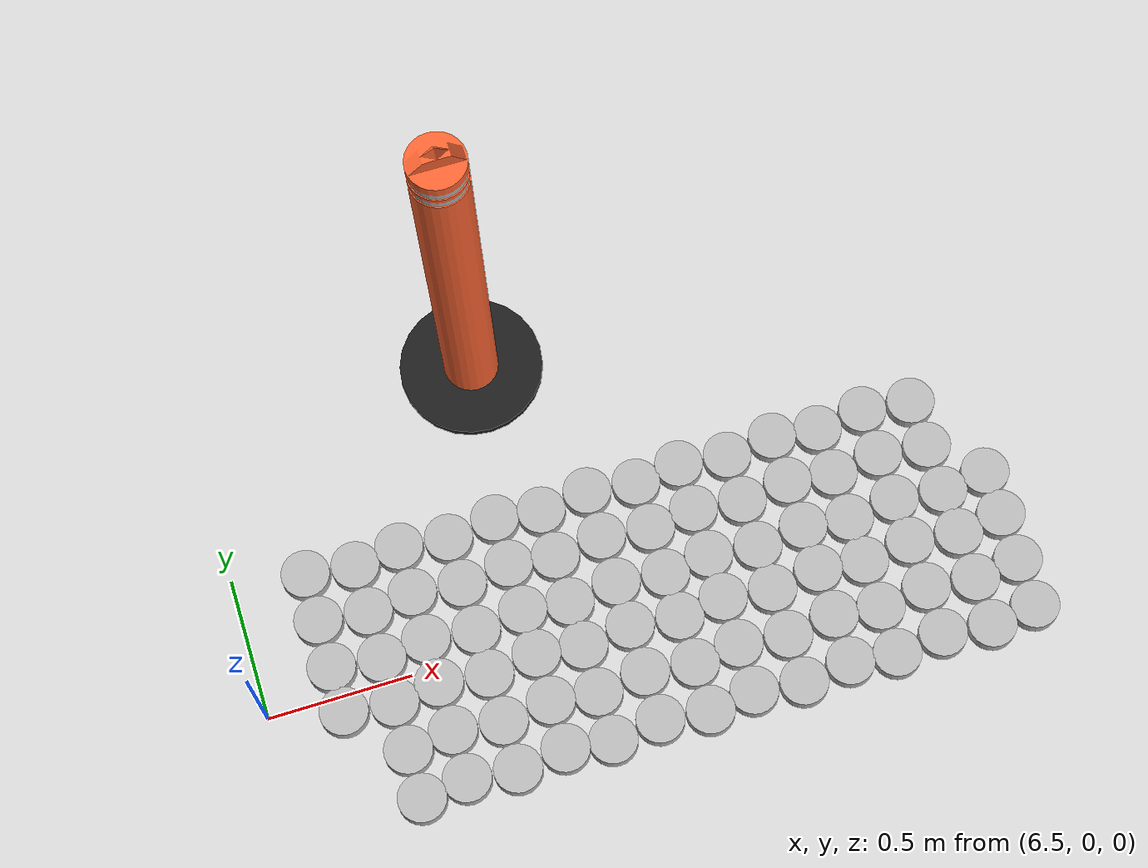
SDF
<sdf version="1.6">
 <world name="default">
  <model name="pylon_orange">
   <include><uri>model://pylon_orange</uri></include>
   <pose>7.5 1 0 0 0 0</pose>
  </model>
  <model name="SnowPuck-31-2-0">
   <pose>6.75 -0.07 0.05  0 0 0</pose>
   <link name="link">
    <inertial>
     <mass>0.01</mass>
     <inertia><ixx>0.145833</ixx><ixy>0</ixy><ixz>0</ixz><iyy>0.145833</iyy><iyz>0</iyz><izz>0.125</izz></inertia>
    </inertial>
    <collision name="collision">
     <geometry><cylinder><radius>.05</radius><length>0.04</length></cylinder></geometry>
    </collision>
    <visual name="visual">
     <geometry><cylinder><radius>.083333</radius><length>0.05</length></cylinder></geometry>
    </visual>
   </link>
  </model>
  <model name="SnowPuck-31-3-0">
   <pose>6.75 0.09 0.05  0 0 0</pose>
   <link name="link">
    <inertial>
     <mass>0.01</mass>
     <inertia><ixx>0.145833</ixx><ixy>0</ixy><ixz>0</ixz><iyy>0.145833</iyy><iyz>0</iyz><izz>0.125</izz></inertia>
    </inertial>
    <collision name="collision">
     <geometry><cylinder><radius>.05</radius><length>0.04</length></cylinder></geometry>
    </collision>
    <visual name="visual">
     <geometry><cylinder><radius>.083333</radius><length>0.05</length></cylinder></geometry>
    </visual>
   </link>
  </model>
  <model name="SnowPuck-31-4-0">
   <pose>6.75 0.26 0.05  0 0 0</pose>
   <link name="link">
    <inertial>
     <mass>0.01</mass>
     <inertia><ixx>0.145833</ixx><ixy>0</ixy><ixz>0</ixz><iyy>0.145833</iyy><iyz>0</iyz><izz>0.125</izz></inertia>
    </inertial>
    <collision name="collision">
     <geometry><cylinder><radius>.05</radius><length>0.04</length></cylinder></geometry>
    </collision>
    <visual name="visual">
     <geometry><cylinder><radius>.083333</radius><length>0.05</length></cylinder></geometry>
    </visual>
   </link>
  </model>
  <model name="SnowPuck-31-5-0">
   <pose>6.75 0.43 0.05  0 0 0</pose>
   <link name="link">
    <inertial>
     <mass>0.01</mass>
     <inertia><ixx>0.145833</ixx><ixy>0</ixy><ixz>0</ixz><iyy>0.145833</iyy><iyz>0</iyz><izz>0.125</izz></inertia>
    </inertial>
    <collision name="collision">
     <geometry><cylinder><radius>.05</radius><length>0.04</length></cylinder></geometry>
    </collision>
    <visual name="visual">
     <geometry><cylinder><radius>.083333</radius><length>0.05</length></cylinder></geometry>
    </visual>
   </link>
  </model>
  <model name="SnowPuck-32-0-0">
   <pose>6.92 -0.43 0.05  0 0 0</pose>
   <link name="link">
    <inertial>
     <mass>0.01</mass>
     <inertia><ixx>0.145833</ixx><ixy>0</ixy><ixz>0</ixz><iyy>0.145833</iyy><iyz>0</iyz><izz>0.125</izz></inertia>
    </inertial>
    <collision name="collision">
     <geometry><cylinder><radius>.05</radius><length>0.04</length></cylinder></geometry>
    </collision>
    <visual name="visual">
     <geometry><cylinder><radius>.083333</radius><length>0.05</length></cylinder></geometry>
    </visual>
   </link>
  </model>
  <model name="SnowPuck-32-1-0">
   <pose>6.92 -0.26 0.05  0 0 0</pose>
   <link name="link">
    <inertial>
     <mass>0.01</mass>
     <inertia><ixx>0.145833</ixx><ixy>0</ixy><ixz>0</ixz><iyy>0.145833</iyy><iyz>0</iyz><izz>0.125</izz></inertia>
    </inertial>
    <collision name="collision">
     <geometry><cylinder><radius>.05</radius><length>0.04</length></cylinder></geometry>
    </collision>
    <visual name="visual">
     <geometry><cylinder><radius>.083333</radius><length>0.05</length></cylinder></geometry>
    </visual>
   </link>
  </model>
  <model name="SnowPuck-32-2-0">
   <pose>6.92 -0.09 0.05  0 0 0</pose>
   <link name="link">
    <inertial>
     <mass>0.01</mass>
     <inertia><ixx>0.145833</ixx><ixy>0</ixy><ixz>0</ixz><iyy>0.145833</iyy><iyz>0</iyz><izz>0.125</izz></inertia>
    </inertial>
    <collision name="collision">
     <geometry><cylinder><radius>.05</radius><length>0.04</length></cylinder></geometry>
    </collision>
    <visual name="visual">
     <geometry><cylinder><radius>.083333</radius><length>0.05</length></cylinder></geometry>
    </visual>
   </link>
  </model>
  <model name="SnowPuck-32-3-0">
   <pose>6.92 0.07 0.05  0 0 0</pose>
   <link name="link">
    <inertial>
     <mass>0.01</mass>
     <inertia><ixx>0.145833</ixx><ixy>0</ixy><ixz>0</ixz><iyy>0.145833</iyy><iyz>0</iyz><izz>0.125</izz></inertia>
    </inertial>
    <collision name="collision">
     <geometry><cylinder><radius>.05</radius><length>0.04</length></cylinder></geometry>
    </collision>
    <visual name="visual">
     <geometry><cylinder><radius>.083333</radius><length>0.05</length></cylinder></geometry>
    </visual>
   </link>
  </model>
  <model name="SnowPuck-32-4-0">
   <pose>6.92 0.24 0.05  0 0 0</pose>
   <link name="link">
    <inertial>
     <mass>0.01</mass>
     <inertia><ixx>0.145833</ixx><ixy>0</ixy><ixz>0</ixz><iyy>0.145833</iyy><iyz>0</iyz><izz>0.125</izz></inertia>
    </inertial>
    <collision name="collision">
     <geometry><cylinder><radius>.05</radius><length>0.04</length></cylinder></geometry>
    </collision>
    <visual name="visual">
     <geometry><cylinder><radius>.083333</radius><length>0.05</length></cylinder></geometry>
    </visual>
   </link>
  </model>
  <model name="SnowPuck-32-5-0">
   <pose>6.92 0.41 0.05  0 0 0</pose>
   <link name="link">
    <inertial>
     <mass>0.01</mass>
     <inertia><ixx>0.145833</ixx><ixy>0</ixy><ixz>0</ixz><iyy>0.145833</iyy><iyz>0</iyz><izz>0.125</izz></inertia>
    </inertial>
    <collision name="collision">
     <geometry><cylinder><radius>.05</radius><length>0.04</length></cylinder></geometry>
    </collision>
    <visual name="visual">
     <geometry><cylinder><radius>.083333</radius><length>0.05</length></cylinder></geometry>
    </visual>
   </link>
  </model>
  <model name="SnowPuck-33-0-0">
   <pose>7.08 -0.41 0.05  0 0 0</pose>
   <link name="link">
    <inertial>
     <mass>0.01</mass>
     <inertia><ixx>0.145833</ixx><ixy>0</ixy><ixz>0</ixz><iyy>0.145833</iyy><iyz>0</iyz><izz>0.125</izz></inertia>
    </inertial>
    <collision name="collision">
     <geometry><cylinder><radius>.05</radius><length>0.04</length></cylinder></geometry>
    </collision>
    <visual name="visual">
     <geometry><cylinder><radius>.083333</radius><length>0.05</length></cylinder></geometry>
    </visual>
   </link>
  </model>
  <model name="SnowPuck-33-1-0">
   <pose>7.08 -0.24 0.05  0 0 0</pose>
   <link name="link">
    <inertial>
     <mass>0.01</mass>
     <inertia><ixx>0.145833</ixx><ixy>0</ixy><ixz>0</ixz><iyy>0.145833</iyy><iyz>0</iyz><izz>0.125</izz></inertia>
    </inertial>
    <collision name="collision">
     <geometry><cylinder><radius>.05</radius><length>0.04</length></cylinder></geometry>
    </collision>
    <visual name="visual">
     <geometry><cylinder><radius>.083333</radius><length>0.05</length></cylinder></geometry>
    </visual>
   </link>
  </model>
  <model name="SnowPuck-33-2-0">
   <pose>7.08 -0.07 0.05  0 0 0</pose>
   <link name="link">
    <inertial>
     <mass>0.01</mass>
     <inertia><ixx>0.145833</ixx><ixy>0</ixy><ixz>0</ixz><iyy>0.145833</iyy><iyz>0</iyz><izz>0.125</izz></inertia>
    </inertial>
    <collision name="collision">
     <geometry><cylinder><radius>.05</radius><length>0.04</length></cylinder></geometry>
    </collision>
    <visual name="visual">
     <geometry><cylinder><radius>.083333</radius><length>0.05</length></cylinder></geometry>
    </visual>
   </link>
  </model>
  <model name="SnowPuck-33-3-0">
   <pose>7.08 0.09 0.05  0 0 0</pose>
   <link name="link">
    <inertial>
     <mass>0.01</mass>
     <inertia><ixx>0.145833</ixx><ixy>0</ixy><ixz>0</ixz><iyy>0.145833</iyy><iyz>0</iyz><izz>0.125</izz></inertia>
    </inertial>
    <collision name="collision">
     <geometry><cylinder><radius>.05</radius><length>0.04</length></cylinder></geometry>
    </collision>
    <visual name="visual">
     <geometry><cylinder><radius>.083333</radius><length>0.05</length></cylinder></geometry>
    </visual>
   </link>
  </model>
  <model name="SnowPuck-33-4-0">
   <pose>7.08 0.26 0.05  0 0 0</pose>
   <link name="link">
    <inertial>
     <mass>0.01</mass>
     <inertia><ixx>0.145833</ixx><ixy>0</ixy><ixz>0</ixz><iyy>0.145833</iyy><iyz>0</iyz><izz>0.125</izz></inertia>
    </inertial>
    <collision name="collision">
     <geometry><cylinder><radius>.05</radius><length>0.04</length></cylinder></geometry>
    </collision>
    <visual name="visual">
     <geometry><cylinder><radius>.083333</radius><length>0.05</length></cylinder></geometry>
    </visual>
   </link>
  </model>
  <model name="SnowPuck-33-5-0">
   <pose>7.08 0.43 0.05  0 0 0</pose>
   <link name="link">
    <inertial>
     <mass>0.01</mass>
     <inertia><ixx>0.145833</ixx><ixy>0</ixy><ixz>0</ixz><iyy>0.145833</iyy><iyz>0</iyz><izz>0.125</izz></inertia>
    </inertial>
    <collision name="collision">
     <geometry><cylinder><radius>.05</radius><length>0.04</length></cylinder></geometry>
    </collision>
    <visual name="visual">
     <geometry><cylinder><radius>.083333</radius><length>0.05</length></cylinder></geometry>
    </visual>
   </link>
  </model>
  <model name="SnowPuck-34-0-0">
   <pose>7.25 -0.43 0.05  0 0 0</pose>
   <link name="link">
    <inertial>
     <mass>0.01</mass>
     <inertia><ixx>0.145833</ixx><ixy>0</ixy><ixz>0</ixz><iyy>0.145833</iyy><iyz>0</iyz><izz>0.125</izz></inertia>
    </inertial>
    <collision name="collision">
     <geometry><cylinder><radius>.05</radius><length>0.04</length></cylinder></geometry>
    </collision>
    <visual name="visual">
     <geometry><cylinder><radius>.083333</radius><length>0.05</length></cylinder></geometry>
    </visual>
   </link>
  </model>
  <model name="SnowPuck-34-1-0">
   <pose>7.25 -0.26 0.05  0 0 0</pose>
   <link name="link">
    <inertial>
     <mass>0.01</mass>
     <inertia><ixx>0.145833</ixx><ixy>0</ixy><ixz>0</ixz><iyy>0.145833</iyy><iyz>0</iyz><izz>0.125</izz></inertia>
    </inertial>
    <collision name="collision">
     <geometry><cylinder><radius>.05</radius><length>0.04</length></cylinder></geometry>
    </collision>
    <visual name="visual">
     <geometry><cylinder><radius>.083333</radius><length>0.05</length></cylinder></geometry>
    </visual>
   </link>
  </model>
  <model name="SnowPuck-34-2-0">
   <pose>7.25 -0.09 0.05  0 0 0</pose>
   <link name="link">
    <inertial>
     <mass>0.01</mass>
     <inertia><ixx>0.145833</ixx><ixy>0</ixy><ixz>0</ixz><iyy>0.145833</iyy><iyz>0</iyz><izz>0.125</izz></inertia>
    </inertial>
    <collision name="collision">
     <geometry><cylinder><radius>.05</radius><length>0.04</length></cylinder></geometry>
    </collision>
    <visual name="visual">
     <geometry><cylinder><radius>.083333</radius><length>0.05</length></cylinder></geometry>
    </visual>
   </link>
  </model>
  <model name="SnowPuck-34-3-0">
   <pose>7.25 0.07 0.05  0 0 0</pose>
   <link name="link">
    <inertial>
     <mass>0.01</mass>
     <inertia><ixx>0.145833</ixx><ixy>0</ixy><ixz>0</ixz><iyy>0.145833</iyy><iyz>0</iyz><izz>0.125</izz></inertia>
    </inertial>
    <collision name="collision">
     <geometry><cylinder><radius>.05</radius><length>0.04</length></cylinder></geometry>
    </collision>
    <visual name="visual">
     <geometry><cylinder><radius>.083333</radius><length>0.05</length></cylinder></geometry>
    </visual>
   </link>
  </model>
  <model name="SnowPuck-34-4-0">
   <pose>7.25 0.24 0.05  0 0 0</pose>
   <link name="link">
    <inertial>
     <mass>0.01</mass>
     <inertia><ixx>0.145833</ixx><ixy>0</ixy><ixz>0</ixz><iyy>0.145833</iyy><iyz>0</iyz><izz>0.125</izz></inertia>
    </inertial>
    <collision name="collision">
     <geometry><cylinder><radius>.05</radius><length>0.04</length></cylinder></geometry>
    </collision>
    <visual name="visual">
     <geometry><cylinder><radius>.083333</radius><length>0.05</length></cylinder></geometry>
    </visual>
   </link>
  </model>
  <model name="SnowPuck-34-5-0">
   <pose>7.25 0.41 0.05  0 0 0</pose>
   <link name="link">
    <inertial>
     <mass>0.01</mass>
     <inertia><ixx>0.145833</ixx><ixy>0</ixy><ixz>0</ixz><iyy>0.145833</iyy><iyz>0</iyz><izz>0.125</izz></inertia>
    </inertial>
    <collision name="collision">
     <geometry><cylinder><radius>.05</radius><length>0.04</length></cylinder></geometry>
    </collision>
    <visual name="visual">
     <geometry><cylinder><radius>.083333</radius><length>0.05</length></cylinder></geometry>
    </visual>
   </link>
  </model>
  <model name="SnowPuck-35-0-0">
   <pose>7.42 -0.41 0.05  0 0 0</pose>
   <link name="link">
    <inertial>
     <mass>0.01</mass>
     <inertia><ixx>0.145833</ixx><ixy>0</ixy><ixz>0</ixz><iyy>0.145833</iyy><iyz>0</iyz><izz>0.125</izz></inertia>
    </inertial>
    <collision name="collision">
     <geometry><cylinder><radius>.05</radius><length>0.04</length></cylinder></geometry>
    </collision>
    <visual name="visual">
     <geometry><cylinder><radius>.083333</radius><length>0.05</length></cylinder></geometry>
    </visual>
   </link>
  </model>
  <model name="SnowPuck-35-1-0">
   <pose>7.42 -0.24 0.05  0 0 0</pose>
   <link name="link">
    <inertial>
     <mass>0.01</mass>
     <inertia><ixx>0.145833</ixx><ixy>0</ixy><ixz>0</ixz><iyy>0.145833</iyy><iyz>0</iyz><izz>0.125</izz></inertia>
    </inertial>
    <collision name="collision">
     <geometry><cylinder><radius>.05</radius><length>0.04</length></cylinder></geometry>
    </collision>
    <visual name="visual">
     <geometry><cylinder><radius>.083333</radius><length>0.05</length></cylinder></geometry>
    </visual>
   </link>
  </model>
  <model name="SnowPuck-35-2-0">
   <pose>7.42 -0.07 0.05  0 0 0</pose>
   <link name="link">
    <inertial>
     <mass>0.01</mass>
     <inertia><ixx>0.145833</ixx><ixy>0</ixy><ixz>0</ixz><iyy>0.145833</iyy><iyz>0</iyz><izz>0.125</izz></inertia>
    </inertial>
    <collision name="collision">
     <geometry><cylinder><radius>.05</radius><length>0.04</length></cylinder></geometry>
    </collision>
    <visual name="visual">
     <geometry><cylinder><radius>.083333</radius><length>0.05</length></cylinder></geometry>
    </visual>
   </link>
  </model>
  <model name="SnowPuck-35-3-0">
   <pose>7.42 0.09 0.05  0 0 0</pose>
   <link name="link">
    <inertial>
     <mass>0.01</mass>
     <inertia><ixx>0.145833</ixx><ixy>0</ixy><ixz>0</ixz><iyy>0.145833</iyy><iyz>0</iyz><izz>0.125</izz></inertia>
    </inertial>
    <collision name="collision">
     <geometry><cylinder><radius>.05</radius><length>0.04</length></cylinder></geometry>
    </collision>
    <visual name="visual">
     <geometry><cylinder><radius>.083333</radius><length>0.05</length></cylinder></geometry>
    </visual>
   </link>
  </model>
  <model name="SnowPuck-35-4-0">
   <pose>7.42 0.26 0.05  0 0 0</pose>
   <link name="link">
    <inertial>
     <mass>0.01</mass>
     <inertia><ixx>0.145833</ixx><ixy>0</ixy><ixz>0</ixz><iyy>0.145833</iyy><iyz>0</iyz><izz>0.125</izz></inertia>
    </inertial>
    <collision name="collision">
     <geometry><cylinder><radius>.05</radius><length>0.04</length></cylinder></geometry>
    </collision>
    <visual name="visual">
     <geometry><cylinder><radius>.083333</radius><length>0.05</length></cylinder></geometry>
    </visual>
   </link>
  </model>
  <model name="SnowPuck-35-5-0">
   <pose>7.42 0.43 0.05  0 0 0</pose>
   <link name="link">
    <inertial>
     <mass>0.01</mass>
     <inertia><ixx>0.145833</ixx><ixy>0</ixy><ixz>0</ixz><iyy>0.145833</iyy><iyz>0</iyz><izz>0.125</izz></inertia>
    </inertial>
    <collision name="collision">
     <geometry><cylinder><radius>.05</radius><length>0.04</length></cylinder></geometry>
    </collision>
    <visual name="visual">
     <geometry><cylinder><radius>.083333</radius><length>0.05</length></cylinder></geometry>
    </visual>
   </link>
  </model>
  <model name="SnowPuck-36-0-0">
   <pose>7.58 -0.43 0.05  0 0 0</pose>
   <link name="link">
    <inertial>
     <mass>0.01</mass>
     <inertia><ixx>0.145833</ixx><ixy>0</ixy><ixz>0</ixz><iyy>0.145833</iyy><iyz>0</iyz><izz>0.125</izz></inertia>
    </inertial>
    <collision name="collision">
     <geometry><cylinder><radius>.05</radius><length>0.04</length></cylinder></geometry>
    </collision>
    <visual name="visual">
     <geometry><cylinder><radius>.083333</radius><length>0.05</length></cylinder></geometry>
    </visual>
   </link>
  </model>
  <model name="SnowPuck-36-1-0">
   <pose>7.58 -0.26 0.05  0 0 0</pose>
   <link name="link">
    <inertial>
     <mass>0.01</mass>
     <inertia><ixx>0.145833</ixx><ixy>0</ixy><ixz>0</ixz><iyy>0.145833</iyy><iyz>0</iyz><izz>0.125</izz></inertia>
    </inertial>
    <collision name="collision">
     <geometry><cylinder><radius>.05</radius><length>0.04</length></cylinder></geometry>
    </collision>
    <visual name="visual">
     <geometry><cylinder><radius>.083333</radius><length>0.05</length></cylinder></geometry>
    </visual>
   </link>
  </model>
  <model name="SnowPuck-36-2-0">
   <pose>7.58 -0.09 0.05  0 0 0</pose>
   <link name="link">
    <inertial>
     <mass>0.01</mass>
     <inertia><ixx>0.145833</ixx><ixy>0</ixy><ixz>0</ixz><iyy>0.145833</iyy><iyz>0</iyz><izz>0.125</izz></inertia>
    </inertial>
    <collision name="collision">
     <geometry><cylinder><radius>.05</radius><length>0.04</length></cylinder></geometry>
    </collision>
    <visual name="visual">
     <geometry><cylinder><radius>.083333</radius><length>0.05</length></cylinder></geometry>
    </visual>
   </link>
  </model>
  <model name="SnowPuck-36-3-0">
   <pose>7.58 0.07 0.05  0 0 0</pose>
   <link name="link">
    <inertial>
     <mass>0.01</mass>
     <inertia><ixx>0.145833</ixx><ixy>0</ixy><ixz>0</ixz><iyy>0.145833</iyy><iyz>0</iyz><izz>0.125</izz></inertia>
    </inertial>
    <collision name="collision">
     <geometry><cylinder><radius>.05</radius><length>0.04</length></cylinder></geometry>
    </collision>
    <visual name="visual">
     <geometry><cylinder><radius>.083333</radius><length>0.05</length></cylinder></geometry>
    </visual>
   </link>
  </model>
  <model name="SnowPuck-36-4-0">
   <pose>7.58 0.24 0.05  0 0 0</pose>
   <link name="link">
    <inertial>
     <mass>0.01</mass>
     <inertia><ixx>0.145833</ixx><ixy>0</ixy><ixz>0</ixz><iyy>0.145833</iyy><iyz>0</iyz><izz>0.125</izz></inertia>
    </inertial>
    <collision name="collision">
     <geometry><cylinder><radius>.05</radius><length>0.04</length></cylinder></geometry>
    </collision>
    <visual name="visual">
     <geometry><cylinder><radius>.083333</radius><length>0.05</length></cylinder></geometry>
    </visual>
   </link>
  </model>
  <model name="SnowPuck-36-5-0">
   <pose>7.58 0.41 0.05  0 0 0</pose>
   <link name="link">
    <inertial>
     <mass>0.01</mass>
     <inertia><ixx>0.145833</ixx><ixy>0</ixy><ixz>0</ixz><iyy>0.145833</iyy><iyz>0</iyz><izz>0.125</izz></inertia>
    </inertial>
    <collision name="collision">
     <geometry><cylinder><radius>.05</radius><length>0.04</length></cylinder></geometry>
    </collision>
    <visual name="visual">
     <geometry><cylinder><radius>.083333</radius><length>0.05</length></cylinder></geometry>
    </visual>
   </link>
  </model>
  <model name="SnowPuck-37-0-0">
   <pose>7.75 -0.41 0.05  0 0 0</pose>
   <link name="link">
    <inertial>
     <mass>0.01</mass>
     <inertia><ixx>0.145833</ixx><ixy>0</ixy><ixz>0</ixz><iyy>0.145833</iyy><iyz>0</iyz><izz>0.125</izz></inertia>
    </inertial>
    <collision name="collision">
     <geometry><cylinder><radius>.05</radius><length>0.04</length></cylinder></geometry>
    </collision>
    <visual name="visual">
     <geometry><cylinder><radius>.083333</radius><length>0.05</length></cylinder></geometry>
    </visual>
   </link>
  </model>
  <model name="SnowPuck-37-1-0">
   <pose>7.75 -0.24 0.05  0 0 0</pose>
   <link name="link">
    <inertial>
     <mass>0.01</mass>
     <inertia><ixx>0.145833</ixx><ixy>0</ixy><ixz>0</ixz><iyy>0.145833</iyy><iyz>0</iyz><izz>0.125</izz></inertia>
    </inertial>
    <collision name="collision">
     <geometry><cylinder><radius>.05</radius><length>0.04</length></cylinder></geometry>
    </collision>
    <visual name="visual">
     <geometry><cylinder><radius>.083333</radius><length>0.05</length></cylinder></geometry>
    </visual>
   </link>
  </model>
  <model name="SnowPuck-37-2-0">
   <pose>7.75 -0.07 0.05  0 0 0</pose>
   <link name="link">
    <inertial>
     <mass>0.01</mass>
     <inertia><ixx>0.145833</ixx><ixy>0</ixy><ixz>0</ixz><iyy>0.145833</iyy><iyz>0</iyz><izz>0.125</izz></inertia>
    </inertial>
    <collision name="collision">
     <geometry><cylinder><radius>.05</radius><length>0.04</length></cylinder></geometry>
    </collision>
    <visual name="visual">
     <geometry><cylinder><radius>.083333</radius><length>0.05</length></cylinder></geometry>
    </visual>
   </link>
  </model>
  <model name="SnowPuck-37-3-0">
   <pose>7.75 0.09 0.05  0 0 0</pose>
   <link name="link">
    <inertial>
     <mass>0.01</mass>
     <inertia><ixx>0.145833</ixx><ixy>0</ixy><ixz>0</ixz><iyy>0.145833</iyy><iyz>0</iyz><izz>0.125</izz></inertia>
    </inertial>
    <collision name="collision">
     <geometry><cylinder><radius>.05</radius><length>0.04</length></cylinder></geometry>
    </collision>
    <visual name="visual">
     <geometry><cylinder><radius>.083333</radius><length>0.05</length></cylinder></geometry>
    </visual>
   </link>
  </model>
  <model name="SnowPuck-37-4-0">
   <pose>7.75 0.26 0.05  0 0 0</pose>
   <link name="link">
    <inertial>
     <mass>0.01</mass>
     <inertia><ixx>0.145833</ixx><ixy>0</ixy><ixz>0</ixz><iyy>0.145833</iyy><iyz>0</iyz><izz>0.125</izz></inertia>
    </inertial>
    <collision name="collision">
     <geometry><cylinder><radius>.05</radius><length>0.04</length></cylinder></geometry>
    </collision>
    <visual name="visual">
     <geometry><cylinder><radius>.083333</radius><length>0.05</length></cylinder></geometry>
    </visual>
   </link>
  </model>
  <model name="SnowPuck-37-5-0">
   <pose>7.75 0.43 0.05  0 0 0</pose>
   <link name="link">
    <inertial>
     <mass>0.01</mass>
     <inertia><ixx>0.145833</ixx><ixy>0</ixy><ixz>0</ixz><iyy>0.145833</iyy><iyz>0</iyz><izz>0.125</izz></inertia>
    </inertial>
    <collision name="collision">
     <geometry><cylinder><radius>.05</radius><length>0.04</length></cylinder></geometry>
    </collision>
    <visual name="visual">
     <geometry><cylinder><radius>.083333</radius><length>0.05</length></cylinder></geometry>
    </visual>
   </link>
  </model>
  <model name="SnowPuck-38-0-0">
   <pose>7.92 -0.43 0.05  0 0 0</pose>
   <link name="link">
    <inertial>
     <mass>0.01</mass>
     <inertia><ixx>0.145833</ixx><ixy>0</ixy><ixz>0</ixz><iyy>0.145833</iyy><iyz>0</iyz><izz>0.125</izz></inertia>
    </inertial>
    <collision name="collision">
     <geometry><cylinder><radius>.05</radius><length>0.04</length></cylinder></geometry>
    </collision>
    <visual name="visual">
     <geometry><cylinder><radius>.083333</radius><length>0.05</length></cylinder></geometry>
    </visual>
   </link>
  </model>
  <model name="SnowPuck-38-1-0">
   <pose>7.92 -0.26 0.05  0 0 0</pose>
   <link name="link">
    <inertial>
     <mass>0.01</mass>
     <inertia><ixx>0.145833</ixx><ixy>0</ixy><ixz>0</ixz><iyy>0.145833</iyy><iyz>0</iyz><izz>0.125</izz></inertia>
    </inertial>
    <collision name="collision">
     <geometry><cylinder><radius>.05</radius><length>0.04</length></cylinder></geometry>
    </collision>
    <visual name="visual">
     <geometry><cylinder><radius>.083333</radius><length>0.05</length></cylinder></geometry>
    </visual>
   </link>
  </model>
  <model name="SnowPuck-38-2-0">
   <pose>7.92 -0.09 0.05  0 0 0</pose>
   <link name="link">
    <inertial>
     <mass>0.01</mass>
     <inertia><ixx>0.145833</ixx><ixy>0</ixy><ixz>0</ixz><iyy>0.145833</iyy><iyz>0</iyz><izz>0.125</izz></inertia>
    </inertial>
    <collision name="collision">
     <geometry><cylinder><radius>.05</radius><length>0.04</length></cylinder></geometry>
    </collision>
    <visual name="visual">
     <geometry><cylinder><radius>.083333</radius><length>0.05</length></cylinder></geometry>
    </visual>
   </link>
  </model>
  <model name="SnowPuck-38-3-0">
   <pose>7.92 0.07 0.05  0 0 0</pose>
   <link name="link">
    <inertial>
     <mass>0.01</mass>
     <inertia><ixx>0.145833</ixx><ixy>0</ixy><ixz>0</ixz><iyy>0.145833</iyy><iyz>0</iyz><izz>0.125</izz></inertia>
    </inertial>
    <collision name="collision">
     <geometry><cylinder><radius>.05</radius><length>0.04</length></cylinder></geometry>
    </collision>
    <visual name="visual">
     <geometry><cylinder><radius>.083333</radius><length>0.05</length></cylinder></geometry>
    </visual>
   </link>
  </model>
  <model name="SnowPuck-38-4-0">
   <pose>7.92 0.24 0.05  0 0 0</pose>
   <link name="link">
    <inertial>
     <mass>0.01</mass>
     <inertia><ixx>0.145833</ixx><ixy>0</ixy><ixz>0</ixz><iyy>0.145833</iyy><iyz>0</iyz><izz>0.125</izz></inertia>
    </inertial>
    <collision name="collision">
     <geometry><cylinder><radius>.05</radius><length>0.04</length></cylinder></geometry>
    </collision>
    <visual name="visual">
     <geometry><cylinder><radius>.083333</radius><length>0.05</length></cylinder></geometry>
    </visual>
   </link>
  </model>
  <model name="SnowPuck-38-5-0">
   <pose>7.92 0.41 0.05  0 0 0</pose>
   <link name="link">
    <inertial>
     <mass>0.01</mass>
     <inertia><ixx>0.145833</ixx><ixy>0</ixy><ixz>0</ixz><iyy>0.145833</iyy><iyz>0</iyz><izz>0.125</izz></inertia>
    </inertial>
    <collision name="collision">
     <geometry><cylinder><radius>.05</radius><length>0.04</length></cylinder></geometry>
    </collision>
    <visual name="visual">
     <geometry><cylinder><radius>.083333</radius><length>0.05</length></cylinder></geometry>
    </visual>
   </link>
  </model>
  <model name="SnowPuck-39-0-0">
   <pose>8.08 -0.41 0.05  0 0 0</pose>
   <link name="link">
    <inertial>
     <mass>0.01</mass>
     <inertia><ixx>0.145833</ixx><ixy>0</ixy><ixz>0</ixz><iyy>0.145833</iyy><iyz>0</iyz><izz>0.125</izz></inertia>
    </inertial>
    <collision name="collision">
     <geometry><cylinder><radius>.05</radius><length>0.04</length></cylinder></geometry>
    </collision>
    <visual name="visual">
     <geometry><cylinder><radius>.083333</radius><length>0.05</length></cylinder></geometry>
    </visual>
   </link>
  </model>
  <model name="SnowPuck-39-1-0">
   <pose>8.08 -0.24 0.05  0 0 0</pose>
   <link name="link">
    <inertial>
     <mass>0.01</mass>
     <inertia><ixx>0.145833</ixx><ixy>0</ixy><ixz>0</ixz><iyy>0.145833</iyy><iyz>0</iyz><izz>0.125</izz></inertia>
    </inertial>
    <collision name="collision">
     <geometry><cylinder><radius>.05</radius><length>0.04</length></cylinder></geometry>
    </collision>
    <visual name="visual">
     <geometry><cylinder><radius>.083333</radius><length>0.05</length></cylinder></geometry>
    </visual>
   </link>
  </model>
  <model name="SnowPuck-39-2-0">
   <pose>8.08 -0.07 0.05  0 0 0</pose>
   <link name="link">
    <inertial>
     <mass>0.01</mass>
     <inertia><ixx>0.145833</ixx><ixy>0</ixy><ixz>0</ixz><iyy>0.145833</iyy><iyz>0</iyz><izz>0.125</izz></inertia>
    </inertial>
    <collision name="collision">
     <geometry><cylinder><radius>.05</radius><length>0.04</length></cylinder></geometry>
    </collision>
    <visual name="visual">
     <geometry><cylinder><radius>.083333</radius><length>0.05</length></cylinder></geometry>
    </visual>
   </link>
  </model>
  <model name="SnowPuck-39-3-0">
   <pose>8.08 0.09 0.05  0 0 0</pose>
   <link name="link">
    <inertial>
     <mass>0.01</mass>
     <inertia><ixx>0.145833</ixx><ixy>0</ixy><ixz>0</ixz><iyy>0.145833</iyy><iyz>0</iyz><izz>0.125</izz></inertia>
    </inertial>
    <collision name="collision">
     <geometry><cylinder><radius>.05</radius><length>0.04</length></cylinder></geometry>
    </collision>
    <visual name="visual">
     <geometry><cylinder><radius>.083333</radius><length>0.05</length></cylinder></geometry>
    </visual>
   </link>
  </model>
  <model name="SnowPuck-39-4-0">
   <pose>8.08 0.26 0.05  0 0 0</pose>
   <link name="link">
    <inertial>
     <mass>0.01</mass>
     <inertia><ixx>0.145833</ixx><ixy>0</ixy><ixz>0</ixz><iyy>0.145833</iyy><iyz>0</iyz><izz>0.125</izz></inertia>
    </inertial>
    <collision name="collision">
     <geometry><cylinder><radius>.05</radius><length>0.04</length></cylinder></geometry>
    </collision>
    <visual name="visual">
     <geometry><cylinder><radius>.083333</radius><length>0.05</length></cylinder></geometry>
    </visual>
   </link>
  </model>
  <model name="SnowPuck-39-5-0">
   <pose>8.08 0.43 0.05  0 0 0</pose>
   <link name="link">
    <inertial>
     <mass>0.01</mass>
     <inertia><ixx>0.145833</ixx><ixy>0</ixy><ixz>0</ixz><iyy>0.145833</iyy><iyz>0</iyz><izz>0.125</izz></inertia>
    </inertial>
    <collision name="collision">
     <geometry><cylinder><radius>.05</radius><length>0.04</length></cylinder></geometry>
    </collision>
    <visual name="visual">
     <geometry><cylinder><radius>.083333</radius><length>0.05</length></cylinder></geometry>
    </visual>
   </link>
  </model>
  <model name="SnowPuck-40-0-0">
   <pose>8.25 -0.43 0.05  0 0 0</pose>
   <link name="link">
    <inertial>
     <mass>0.01</mass>
     <inertia><ixx>0.145833</ixx><ixy>0</ixy><ixz>0</ixz><iyy>0.145833</iyy><iyz>0</iyz><izz>0.125</izz></inertia>
    </inertial>
    <collision name="collision">
     <geometry><cylinder><radius>.05</radius><length>0.04</length></cylinder></geometry>
    </collision>
    <visual name="visual">
     <geometry><cylinder><radius>.083333</radius><length>0.05</length></cylinder></geometry>
    </visual>
   </link>
  </model>
  <model name="SnowPuck-40-1-0">
   <pose>8.25 -0.26 0.05  0 0 0</pose>
   <link name="link">
    <inertial>
     <mass>0.01</mass>
     <inertia><ixx>0.145833</ixx><ixy>0</ixy><ixz>0</ixz><iyy>0.145833</iyy><iyz>0</iyz><izz>0.125</izz></inertia>
    </inertial>
    <collision name="collision">
     <geometry><cylinder><radius>.05</radius><length>0.04</length></cylinder></geometry>
    </collision>
    <visual name="visual">
     <geometry><cylinder><radius>.083333</radius><length>0.05</length></cylinder></geometry>
    </visual>
   </link>
  </model>
  <model name="SnowPuck-40-2-0">
   <pose>8.25 -0.09 0.05  0 0 0</pose>
   <link name="link">
    <inertial>
     <mass>0.01</mass>
     <inertia><ixx>0.145833</ixx><ixy>0</ixy><ixz>0</ixz><iyy>0.145833</iyy><iyz>0</iyz><izz>0.125</izz></inertia>
    </inertial>
    <collision name="collision">
     <geometry><cylinder><radius>.05</radius><length>0.04</length></cylinder></geometry>
    </collision>
    <visual name="visual">
     <geometry><cylinder><radius>.083333</radius><length>0.05</length></cylinder></geometry>
    </visual>
   </link>
  </model>
  <model name="SnowPuck-40-3-0">
   <pose>8.25 0.07 0.05  0 0 0</pose>
   <link name="link">
    <inertial>
     <mass>0.01</mass>
     <inertia><ixx>0.145833</ixx><ixy>0</ixy><ixz>0</ixz><iyy>0.145833</iyy><iyz>0</iyz><izz>0.125</izz></inertia>
    </inertial>
    <collision name="collision">
     <geometry><cylinder><radius>.05</radius><length>0.04</length></cylinder></geometry>
    </collision>
    <visual name="visual">
     <geometry><cylinder><radius>.083333</radius><length>0.05</length></cylinder></geometry>
    </visual>
   </link>
  </model>
  <model name="SnowPuck-40-4-0">
   <pose>8.25 0.24 0.05  0 0 0</pose>
   <link name="link">
    <inertial>
     <mass>0.01</mass>
     <inertia><ixx>0.145833</ixx><ixy>0</ixy><ixz>0</ixz><iyy>0.145833</iyy><iyz>0</iyz><izz>0.125</izz></inertia>
    </inertial>
    <collision name="collision">
     <geometry><cylinder><radius>.05</radius><length>0.04</length></cylinder></geometry>
    </collision>
    <visual name="visual">
     <geometry><cylinder><radius>.083333</radius><length>0.05</length></cylinder></geometry>
    </visual>
   </link>
  </model>
  <model name="SnowPuck-40-5-0">
   <pose>8.25 0.41 0.05  0 0 0</pose>
   <link name="link">
    <inertial>
     <mass>0.01</mass>
     <inertia><ixx>0.145833</ixx><ixy>0</ixy><ixz>0</ixz><iyy>0.145833</iyy><iyz>0</iyz><izz>0.125</izz></inertia>
    </inertial>
    <collision name="collision">
     <geometry><cylinder><radius>.05</radius><length>0.04</length></cylinder></geometry>
    </collision>
    <visual name="visual">
     <geometry><cylinder><radius>.083333</radius><length>0.05</length></cylinder></geometry>
    </visual>
   </link>
  </model>
  <model name="SnowPuck-41-0-0">
   <pose>8.42 -0.41 0.05  0 0 0</pose>
   <link name="link">
    <inertial>
     <mass>0.01</mass>
     <inertia><ixx>0.145833</ixx><ixy>0</ixy><ixz>0</ixz><iyy>0.145833</iyy><iyz>0</iyz><izz>0.125</izz></inertia>
    </inertial>
    <collision name="collision">
     <geometry><cylinder><radius>.05</radius><length>0.04</length></cylinder></geometry>
    </collision>
    <visual name="visual">
     <geometry><cylinder><radius>.083333</radius><length>0.05</length></cylinder></geometry>
    </visual>
   </link>
  </model>
  <model name="SnowPuck-41-1-0">
   <pose>8.42 -0.24 0.05  0 0 0</pose>
   <link name="link">
    <inertial>
     <mass>0.01</mass>
     <inertia><ixx>0.145833</ixx><ixy>0</ixy><ixz>0</ixz><iyy>0.145833</iyy><iyz>0</iyz><izz>0.125</izz></inertia>
    </inertial>
    <collision name="collision">
     <geometry><cylinder><radius>.05</radius><length>0.04</length></cylinder></geometry>
    </collision>
    <visual name="visual">
     <geometry><cylinder><radius>.083333</radius><length>0.05</length></cylinder></geometry>
    </visual>
   </link>
  </model>
  <model name="SnowPuck-41-2-0">
   <pose>8.42 -0.07 0.05  0 0 0</pose>
   <link name="link">
    <inertial>
     <mass>0.01</mass>
     <inertia><ixx>0.145833</ixx><ixy>0</ixy><ixz>0</ixz><iyy>0.145833</iyy><iyz>0</iyz><izz>0.125</izz></inertia>
    </inertial>
    <collision name="collision">
     <geometry><cylinder><radius>.05</radius><length>0.04</length></cylinder></geometry>
    </collision>
    <visual name="visual">
     <geometry><cylinder><radius>.083333</radius><length>0.05</length></cylinder></geometry>
    </visual>
   </link>
  </model>
  <model name="SnowPuck-41-3-0">
   <pose>8.42 0.09 0.05  0 0 0</pose>
   <link name="link">
    <inertial>
     <mass>0.01</mass>
     <inertia><ixx>0.145833</ixx><ixy>0</ixy><ixz>0</ixz><iyy>0.145833</iyy><iyz>0</iyz><izz>0.125</izz></inertia>
    </inertial>
    <collision name="collision">
     <geometry><cylinder><radius>.05</radius><length>0.04</length></cylinder></geometry>
    </collision>
    <visual name="visual">
     <geometry><cylinder><radius>.083333</radius><length>0.05</length></cylinder></geometry>
    </visual>
   </link>
  </model>
  <model name="SnowPuck-41-4-0">
   <pose>8.42 0.26 0.05  0 0 0</pose>
   <link name="link">
    <inertial>
     <mass>0.01</mass>
     <inertia><ixx>0.145833</ixx><ixy>0</ixy><ixz>0</ixz><iyy>0.145833</iyy><iyz>0</iyz><izz>0.125</izz></inertia>
    </inertial>
    <collision name="collision">
     <geometry><cylinder><radius>.05</radius><length>0.04</length></cylinder></geometry>
    </collision>
    <visual name="visual">
     <geometry><cylinder><radius>.083333</radius><length>0.05</length></cylinder></geometry>
    </visual>
   </link>
  </model>
  <model name="SnowPuck-41-5-0">
   <pose>8.42 0.43 0.05  0 0 0</pose>
   <link name="link">
    <inertial>
     <mass>0.01</mass>
     <inertia><ixx>0.145833</ixx><ixy>0</ixy><ixz>0</ixz><iyy>0.145833</iyy><iyz>0</iyz><izz>0.125</izz></inertia>
    </inertial>
    <collision name="collision">
     <geometry><cylinder><radius>.05</radius><length>0.04</length></cylinder></geometry>
    </collision>
    <visual name="visual">
     <geometry><cylinder><radius>.083333</radius><length>0.05</length></cylinder></geometry>
    </visual>
   </link>
  </model>
  <model name="SnowPuck-42-0-0">
   <pose>8.58 -0.43 0.05  0 0 0</pose>
   <link name="link">
    <inertial>
     <mass>0.01</mass>
     <inertia><ixx>0.145833</ixx><ixy>0</ixy><ixz>0</ixz><iyy>0.145833</iyy><iyz>0</iyz><izz>0.125</izz></inertia>
    </inertial>
    <collision name="collision">
     <geometry><cylinder><radius>.05</radius><length>0.04</length></cylinder></geometry>
    </collision>
    <visual name="visual">
     <geometry><cylinder><radius>.083333</radius><length>0.05</length></cylinder></geometry>
    </visual>
   </link>
  </model>
  <model name="SnowPuck-42-1-0">
   <pose>8.58 -0.26 0.05  0 0 0</pose>
   <link name="link">
    <inertial>
     <mass>0.01</mass>
     <inertia><ixx>0.145833</ixx><ixy>0</ixy><ixz>0</ixz><iyy>0.145833</iyy><iyz>0</iyz><izz>0.125</izz></inertia>
    </inertial>
    <collision name="collision">
     <geometry><cylinder><radius>.05</radius><length>0.04</length></cylinder></geometry>
    </collision>
    <visual name="visual">
     <geometry><cylinder><radius>.083333</radius><length>0.05</length></cylinder></geometry>
    </visual>
   </link>
  </model>
  <model name="SnowPuck-42-2-0">
   <pose>8.58 -0.09 0.05  0 0 0</pose>
   <link name="link">
    <inertial>
     <mass>0.01</mass>
     <inertia><ixx>0.145833</ixx><ixy>0</ixy><ixz>0</ixz><iyy>0.145833</iyy><iyz>0</iyz><izz>0.125</izz></inertia>
    </inertial>
    <collision name="collision">
     <geometry><cylinder><radius>.05</radius><length>0.04</length></cylinder></geometry>
    </collision>
    <visual name="visual">
     <geometry><cylinder><radius>.083333</radius><length>0.05</length></cylinder></geometry>
    </visual>
   </link>
  </model>
  <model name="SnowPuck-42-3-0">
   <pose>8.58 0.07 0.05  0 0 0</pose>
   <link name="link">
    <inertial>
     <mass>0.01</mass>
     <inertia><ixx>0.145833</ixx><ixy>0</ixy><ixz>0</ixz><iyy>0.145833</iyy><iyz>0</iyz><izz>0.125</izz></inertia>
    </inertial>
    <collision name="collision">
     <geometry><cylinder><radius>.05</radius><length>0.04</length></cylinder></geometry>
    </collision>
    <visual name="visual">
     <geometry><cylinder><radius>.083333</radius><length>0.05</length></cylinder></geometry>
    </visual>
   </link>
  </model>
  <model name="SnowPuck-42-4-0">
   <pose>8.58 0.24 0.05  0 0 0</pose>
   <link name="link">
    <inertial>
     <mass>0.01</mass>
     <inertia><ixx>0.145833</ixx><ixy>0</ixy><ixz>0</ixz><iyy>0.145833</iyy><iyz>0</iyz><izz>0.125</izz></inertia>
    </inertial>
    <collision name="collision">
     <geometry><cylinder><radius>.05</radius><length>0.04</length></cylinder></geometry>
    </collision>
    <visual name="visual">
     <geometry><cylinder><radius>.083333</radius><length>0.05</length></cylinder></geometry>
    </visual>
   </link>
  </model>
  <model name="SnowPuck-42-5-0">
   <pose>8.58 0.41 0.05  0 0 0</pose>
   <link name="link">
    <inertial>
     <mass>0.01</mass>
     <inertia><ixx>0.145833</ixx><ixy>0</ixy><ixz>0</ixz><iyy>0.145833</iyy><iyz>0</iyz><izz>0.125</izz></inertia>
    </inertial>
    <collision name="collision">
     <geometry><cylinder><radius>.05</radius><length>0.04</length></cylinder></geometry>
    </collision>
    <visual name="visual">
     <geometry><cylinder><radius>.083333</radius><length>0.05</length></cylinder></geometry>
    </visual>
   </link>
  </model>
  <model name="SnowPuck-43-0-0">
   <pose>8.75 -0.41 0.05  0 0 0</pose>
   <link name="link">
    <inertial>
     <mass>0.01</mass>
     <inertia><ixx>0.145833</ixx><ixy>0</ixy><ixz>0</ixz><iyy>0.145833</iyy><iyz>0</iyz><izz>0.125</izz></inertia>
    </inertial>
    <collision name="collision">
     <geometry><cylinder><radius>.05</radius><length>0.04</length></cylinder></geometry>
    </collision>
    <visual name="visual">
     <geometry><cylinder><radius>.083333</radius><length>0.05</length></cylinder></geometry>
    </visual>
   </link>
  </model>
  <model name="SnowPuck-43-1-0">
   <pose>8.75 -0.24 0.05  0 0 0</pose>
   <link name="link">
    <inertial>
     <mass>0.01</mass>
     <inertia><ixx>0.145833</ixx><ixy>0</ixy><ixz>0</ixz><iyy>0.145833</iyy><iyz>0</iyz><izz>0.125</izz></inertia>
    </inertial>
    <collision name="collision">
     <geometry><cylinder><radius>.05</radius><length>0.04</length></cylinder></geometry>
    </collision>
    <visual name="visual">
     <geometry><cylinder><radius>.083333</radius><length>0.05</length></cylinder></geometry>
    </visual>
   </link>
  </model>
  <model name="SnowPuck-43-2-0">
   <pose>8.75 -0.07 0.05  0 0 0</pose>
   <link name="link">
    <inertial>
     <mass>0.01</mass>
     <inertia><ixx>0.145833</ixx><ixy>0</ixy><ixz>0</ixz><iyy>0.145833</iyy><iyz>0</iyz><izz>0.125</izz></inertia>
    </inertial>
    <collision name="collision">
     <geometry><cylinder><radius>.05</radius><length>0.04</length></cylinder></geometry>
    </collision>
    <visual name="visual">
     <geometry><cylinder><radius>.083333</radius><length>0.05</length></cylinder></geometry>
    </visual>
   </link>
  </model>
  <model name="SnowPuck-43-3-0">
   <pose>8.75 0.09 0.05  0 0 0</pose>
   <link name="link">
    <inertial>
     <mass>0.01</mass>
     <inertia><ixx>0.145833</ixx><ixy>0</ixy><ixz>0</ixz><iyy>0.145833</iyy><iyz>0</iyz><izz>0.125</izz></inertia>
    </inertial>
    <collision name="collision">
     <geometry><cylinder><radius>.05</radius><length>0.04</length></cylinder></geometry>
    </collision>
    <visual name="visual">
     <geometry><cylinder><radius>.083333</radius><length>0.05</length></cylinder></geometry>
    </visual>
   </link>
  </model>
  <model name="SnowPuck-43-4-0">
   <pose>8.75 0.26 0.05  0 0 0</pose>
   <link name="link">
    <inertial>
     <mass>0.01</mass>
     <inertia><ixx>0.145833</ixx><ixy>0</ixy><ixz>0</ixz><iyy>0.145833</iyy><iyz>0</iyz><izz>0.125</izz></inertia>
    </inertial>
    <collision name="collision">
     <geometry><cylinder><radius>.05</radius><length>0.04</length></cylinder></geometry>
    </collision>
    <visual name="visual">
     <geometry><cylinder><radius>.083333</radius><length>0.05</length></cylinder></geometry>
    </visual>
   </link>
  </model>
  <model name="SnowPuck-43-5-0">
   <pose>8.75 0.43 0.05  0 0 0</pose>
   <link name="link">
    <inertial>
     <mass>0.01</mass>
     <inertia><ixx>0.145833</ixx><ixy>0</ixy><ixz>0</ixz><iyy>0.145833</iyy><iyz>0</iyz><izz>0.125</izz></inertia>
    </inertial>
    <collision name="collision">
     <geometry><cylinder><radius>.05</radius><length>0.04</length></cylinder></geometry>
    </collision>
    <visual name="visual">
     <geometry><cylinder><radius>.083333</radius><length>0.05</length></cylinder></geometry>
    </visual>
   </link>
  </model>
  <model name="SnowPuck-44-0-0">
   <pose>8.92 -0.43 0.05  0 0 0</pose>
   <link name="link">
    <inertial>
     <mass>0.01</mass>
     <inertia><ixx>0.145833</ixx><ixy>0</ixy><ixz>0</ixz><iyy>0.145833</iyy><iyz>0</iyz><izz>0.125</izz></inertia>
    </inertial>
    <collision name="collision">
     <geometry><cylinder><radius>.05</radius><length>0.04</length></cylinder></geometry>
    </collision>
    <visual name="visual">
     <geometry><cylinder><radius>.083333</radius><length>0.05</length></cylinder></geometry>
    </visual>
   </link>
  </model>
  <model name="SnowPuck-44-1-0">
   <pose>8.92 -0.26 0.05  0 0 0</pose>
   <link name="link">
    <inertial>
     <mass>0.01</mass>
     <inertia><ixx>0.145833</ixx><ixy>0</ixy><ixz>0</ixz><iyy>0.145833</iyy><iyz>0</iyz><izz>0.125</izz></inertia>
    </inertial>
    <collision name="collision">
     <geometry><cylinder><radius>.05</radius><length>0.04</length></cylinder></geometry>
    </collision>
    <visual name="visual">
     <geometry><cylinder><radius>.083333</radius><length>0.05</length></cylinder></geometry>
    </visual>
   </link>
  </model>
  <model name="SnowPuck-44-2-0">
   <pose>8.92 -0.09 0.05  0 0 0</pose>
   <link name="link">
    <inertial>
     <mass>0.01</mass>
     <inertia><ixx>0.145833</ixx><ixy>0</ixy><ixz>0</ixz><iyy>0.145833</iyy><iyz>0</iyz><izz>0.125</izz></inertia>
    </inertial>
    <collision name="collision">
     <geometry><cylinder><radius>.05</radius><length>0.04</length></cylinder></geometry>
    </collision>
    <visual name="visual">
     <geometry><cylinder><radius>.083333</radius><length>0.05</length></cylinder></geometry>
    </visual>
   </link>
  </model>
  <model name="SnowPuck-44-3-0">
   <pose>8.92 0.07 0.05  0 0 0</pose>
   <link name="link">
    <inertial>
     <mass>0.01</mass>
     <inertia><ixx>0.145833</ixx><ixy>0</ixy><ixz>0</ixz><iyy>0.145833</iyy><iyz>0</iyz><izz>0.125</izz></inertia>
    </inertial>
    <collision name="collision">
     <geometry><cylinder><radius>.05</radius><length>0.04</length></cylinder></geometry>
    </collision>
    <visual name="visual">
     <geometry><cylinder><radius>.083333</radius><length>0.05</length></cylinder></geometry>
    </visual>
   </link>
  </model>
  <model name="SnowPuck-44-4-0">
   <pose>8.92 0.24 0.05  0 0 0</pose>
   <link name="link">
    <inertial>
     <mass>0.01</mass>
     <inertia><ixx>0.145833</ixx><ixy>0</ixy><ixz>0</ixz><iyy>0.145833</iyy><iyz>0</iyz><izz>0.125</izz></inertia>
    </inertial>
    <collision name="collision">
     <geometry><cylinder><radius>.05</radius><length>0.04</length></cylinder></geometry>
    </collision>
    <visual name="visual">
     <geometry><cylinder><radius>.083333</radius><length>0.05</length></cylinder></geometry>
    </visual>
   </link>
  </model>
  <model name="SnowPuck-44-5-0">
   <pose>8.92 0.41 0.05  0 0 0</pose>
   <link name="link">
    <inertial>
     <mass>0.01</mass>
     <inertia><ixx>0.145833</ixx><ixy>0</ixy><ixz>0</ixz><iyy>0.145833</iyy><iyz>0</iyz><izz>0.125</izz></inertia>
    </inertial>
    <collision name="collision">
     <geometry><cylinder><radius>.05</radius><length>0.04</length></cylinder></geometry>
    </collision>
    <visual name="visual">
     <geometry><cylinder><radius>.083333</radius><length>0.05</length></cylinder></geometry>
    </visual>
   </link>
  </model>
  <model name="SnowPuck-45-0-0">
   <pose>9.08 -0.41 0.05  0 0 0</pose>
   <link name="link">
    <inertial>
     <mass>0.01</mass>
     <inertia><ixx>0.145833</ixx><ixy>0</ixy><ixz>0</ixz><iyy>0.145833</iyy><iyz>0</iyz><izz>0.125</izz></inertia>
    </inertial>
    <collision name="collision">
     <geometry><cylinder><radius>.05</radius><length>0.04</length></cylinder></geometry>
    </collision>
    <visual name="visual">
     <geometry><cylinder><radius>.083333</radius><length>0.05</length></cylinder></geometry>
    </visual>
   </link>
  </model>
  <model name="SnowPuck-45-1-0">
   <pose>9.08 -0.24 0.05  0 0 0</pose>
   <link name="link">
    <inertial>
     <mass>0.01</mass>
     <inertia><ixx>0.145833</ixx><ixy>0</ixy><ixz>0</ixz><iyy>0.145833</iyy><iyz>0</iyz><izz>0.125</izz></inertia>
    </inertial>
    <collision name="collision">
     <geometry><cylinder><radius>.05</radius><length>0.04</length></cylinder></geometry>
    </collision>
    <visual name="visual">
     <geometry><cylinder><radius>.083333</radius><length>0.05</length></cylinder></geometry>
    </visual>
   </link>
  </model>
  <model name="SnowPuck-45-2-0">
   <pose>9.08 -0.07 0.05  0 0 0</pose>
   <link name="link">
    <inertial>
     <mass>0.01</mass>
     <inertia><ixx>0.145833</ixx><ixy>0</ixy><ixz>0</ixz><iyy>0.145833</iyy><iyz>0</iyz><izz>0.125</izz></inertia>
    </inertial>
    <collision name="collision">
     <geometry><cylinder><radius>.05</radius><length>0.04</length></cylinder></geometry>
    </collision>
    <visual name="visual">
     <geometry><cylinder><radius>.083333</radius><length>0.05</length></cylinder></geometry>
    </visual>
   </link>
  </model>
  <model name="SnowPuck-45-3-0">
   <pose>9.08 0.09 0.05  0 0 0</pose>
   <link name="link">
    <inertial>
     <mass>0.01</mass>
     <inertia><ixx>0.145833</ixx><ixy>0</ixy><ixz>0</ixz><iyy>0.145833</iyy><iyz>0</iyz><izz>0.125</izz></inertia>
    </inertial>
    <collision name="collision">
     <geometry><cylinder><radius>.05</radius><length>0.04</length></cylinder></geometry>
    </collision>
    <visual name="visual">
     <geometry><cylinder><radius>.083333</radius><length>0.05</length></cylinder></geometry>
    </visual>
   </link>
  </model>
 </world>
</sdf>
